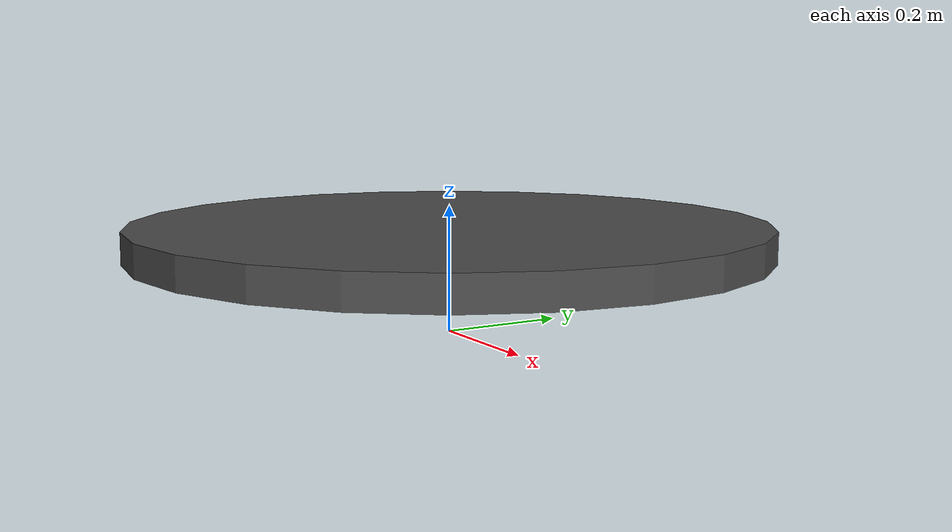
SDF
<?xml version="1.0" ?>
<sdf version="1.9">
  <model name="sutra_x500">
    <link name="base_link">
      <pose>0 0 0.15 0 0 0</pose>
      <inertial>
        <mass>1.5</mass>
        <inertia>
          <ixx>0.0035</ixx>
          <iyy>0.0035</iyy>
          <izz>0.0063</izz>
          <ixy>0</ixy>
          <ixz>0</ixz>
          <iyz>0</iyz>
        </inertia>
      </inertial>

      <!-- Visual: simple quadrotor frame -->
      <visual name="visual">
        <geometry>
          <cylinder>
            <radius>0.5</radius>
            <length>0.05</length>
          </cylinder>
        </geometry>
        <material>
          <ambient>0.2 0.2 0.2 1</ambient>
          <diffuse>0.3 0.3 0.3 1</diffuse>
        </material>
      </visual>

      <!-- Collision: simple cylinder -->
      <collision name="collision">
        <geometry>
          <cylinder>
            <radius>0.5</radius>
            <length>0.1</length>
          </cylinder>
        </geometry>
      </collision>

      <!-- IMU (250 Hz) -->
      <sensor name="imu" type="imu">
        <always_on>true</always_on>
        <update_rate>250</update_rate>
        <topic>/fmu/out/sensor_combined</topic>
      </sensor>

      <!-- GPS/NavSat (5 Hz) -->
      <sensor name="gps" type="navsat">
        <always_on>true</always_on>
        <update_rate>5</update_rate>
      </sensor>

      <!-- RGB Camera (forward, 30 Hz) -->
      <sensor name="rgb_camera" type="camera">
        <always_on>true</always_on>
        <update_rate>30</update_rate>
        <topic>/camera/rgb/image_raw</topic>
        <camera name="rgb">
          <horizontal_fov>1.047</horizontal_fov>
          <image>
            <width>640</width>
            <height>480</height>
            <format>R8G8B8</format>
          </image>
          <clip>
            <near>0.1</near>
            <far>100</far>
          </clip>
        </camera>
        <pose relative_to="base_link">0.3 0 0.1 0 0 0</pose>
      </sensor>

      <!-- Thermal Camera (downward, 10 Hz) -->
      <sensor name="thermal" type="thermal_camera">
        <always_on>true</always_on>
        <update_rate>10</update_rate>
        <topic>/camera/thermal/image_raw</topic>
        <camera name="thermal">
          <horizontal_fov>0.872</horizontal_fov>
          <image>
            <width>320</width>
            <height>240</height>
            <format>L8</format>
          </image>
          <clip>
            <near>0.1</near>
            <far>50</far>
          </clip>
        </camera>
        <pose relative_to="base_link">0 0 -0.1 1.5708 0 0</pose>
      </sensor>

      <!-- 3D LiDAR (10 Hz, 1024x32 channels) -->
      <sensor name="lidar" type="gpu_lidar">
        <always_on>true</always_on>
        <update_rate>10</update_rate>
        <topic>/lidar/points</topic>
        <lidar name="lidar">
          <scan>
            <horizontal>
              <samples>1024</samples>
              <min_angle>-3.14159</min_angle>
              <max_angle>3.14159</max_angle>
            </horizontal>
            <vertical>
              <samples>32</samples>
              <min_angle>-0.4189</min_angle>
              <max_angle>0.4189</max_angle>
            </vertical>
          </scan>
          <range>
            <min>0.1</min>
            <max>30</max>
          </range>
        </lidar>
        <pose relative_to="base_link">0 0 0.2 0 0 0</pose>
      </sensor>

      <!-- mmWave Radar (downward, 20 Hz, proxy) -->
      <sensor name="radar" type="ray">
        <always_on>true</always_on>
        <update_rate>20</update_rate>
        <topic>/radar/scan</topic>
        <ray name="radar_ray">
          <scan>
            <horizontal>
              <samples>100</samples>
              <min_angle>-0.5236</min_angle>
              <max_angle>0.5236</max_angle>
            </horizontal>
          </scan>
          <range>
            <min>0.5</min>
            <max>50</max>
          </range>
        </ray>
        <pose relative_to="base_link">0 0 -0.1 1.5708 0 0</pose>
      </sensor>
    </link>

    <!-- 4× Motor links (simplified from default x500) -->
    <link name="motor_0">
      <pose>0.25 0.25 0.15 0 0 0</pose>
      <inertial>
        <mass>0.05</mass>
        <inertia>
          <ixx>1e-05</ixx><iyy>1e-05</iyy><izz>1e-05</izz>
          <ixy>0</ixy><ixz>0</ixz><iyz>0</iyz>
        </inertia>
      </inertial>
      <visual name="visual">
        <geometry><cylinder><radius>0.02</radius><length>0.02</length></cylinder></geometry>
        <material><ambient>0.8 0.8 0.8 1</ambient><diffuse>0.9 0.9 0.9 1</diffuse></material>
      </visual>
      <collision name="collision">
        <geometry><cylinder><radius>0.02</radius><length>0.02</length></cylinder></geometry>
      </collision>
    </link>

    <link name="motor_1">
      <pose>-0.25 -0.25 0.15 0 0 0</pose>
      <inertial>
        <mass>0.05</mass>
        <inertia>
          <ixx>1e-05</ixx><iyy>1e-05</iyy><izz>1e-05</izz>
          <ixy>0</ixy><ixz>0</ixz><iyz>0</iyz>
        </inertia>
      </inertial>
      <visual name="visual">
        <geometry><cylinder><radius>0.02</radius><length>0.02</length></cylinder></geometry>
        <material><ambient>0.8 0.8 0.8 1</ambient><diffuse>0.9 0.9 0.9 1</diffuse></material>
      </visual>
      <collision name="collision">
        <geometry><cylinder><radius>0.02</radius><length>0.02</length></cylinder></geometry>
      </collision>
    </link>

    <link name="motor_2">
      <pose>0.25 -0.25 0.15 0 0 0</pose>
      <inertial>
        <mass>0.05</mass>
        <inertia>
          <ixx>1e-05</ixx><iyy>1e-05</iyy><izz>1e-05</izz>
          <ixy>0</ixy><ixz>0</ixz><iyz>0</iyz>
        </inertia>
      </inertial>
      <visual name="visual">
        <geometry><cylinder><radius>0.02</radius><length>0.02</length></cylinder></geometry>
        <material><ambient>0.8 0.8 0.8 1</ambient><diffuse>0.9 0.9 0.9 1</diffuse></material>
      </visual>
      <collision name="collision">
        <geometry><cylinder><radius>0.02</radius><length>0.02</length></cylinder></geometry>
      </collision>
    </link>

    <link name="motor_3">
      <pose>-0.25 0.25 0.15 0 0 0</pose>
      <inertial>
        <mass>0.05</mass>
        <inertia>
          <ixx>1e-05</ixx><iyy>1e-05</iyy><izz>1e-05</izz>
          <ixy>0</ixy><ixz>0</ixz><iyz>0</iyz>
        </inertia>
      </inertial>
      <visual name="visual">
        <geometry><cylinder><radius>0.02</radius><length>0.02</length></cylinder></geometry>
        <material><ambient>0.8 0.8 0.8 1</ambient><diffuse>0.9 0.9 0.9 1</diffuse></material>
      </visual>
      <collision name="collision">
        <geometry><cylinder><radius>0.02</radius><length>0.02</length></cylinder></geometry>
      </collision>
    </link>

    <!-- Joint: base to motor_0 -->
    <joint name="joint_motor_0" type="revolute">
      <parent>base_link</parent>
      <child>motor_0</child>
      <axis>
        <xyz>0 0 1</xyz>
        <limit>
          <lower>-1e+16</lower>
          <upper>1e+16</upper>
        </limit>
      </axis>
    </joint>

    <!-- Joint: base to motor_1 -->
    <joint name="joint_motor_1" type="revolute">
      <parent>base_link</parent>
      <child>motor_1</child>
      <axis>
        <xyz>0 0 1</xyz>
        <limit>
          <lower>-1e+16</lower>
          <upper>1e+16</upper>
        </limit>
      </axis>
    </joint>

    <!-- Joint: base to motor_2 -->
    <joint name="joint_motor_2" type="revolute">
      <parent>base_link</parent>
      <child>motor_2</child>
      <axis>
        <xyz>0 0 1</xyz>
        <limit>
          <lower>-1e+16</lower>
          <upper>1e+16</upper>
        </limit>
      </axis>
    </joint>

    <!-- Joint: base to motor_3 -->
    <joint name="joint_motor_3" type="revolute">
      <parent>base_link</parent>
      <child>motor_3</child>
      <axis>
        <xyz>0 0 1</xyz>
        <limit>
          <lower>-1e+16</lower>
          <upper>1e+16</upper>
        </limit>
      </axis>
    </joint>

    <!-- Drone battery plugin (for PX4) -->
    <plugin filename="gz-sim-battery-system" name="gz::sim::systems::Battery">
      <battery_name>lipo2s2p</battery_name>
      <voltage>12.6</voltage>
      <capacity>2.2</capacity>
      <resistance>0.001</resistance>
      <smooth_current_tau>0.99</smooth_current_tau>
      <start_on_motion>true</start_on_motion>
    </plugin>

    <!-- Joint state publisher for visualization -->
    <plugin filename="gz-sim-joint-state-publisher-system" name="gz::sim::systems::JointStatePublisher">
      <joint_name>joint_motor_0</joint_name>
      <joint_name>joint_motor_1</joint_name>
      <joint_name>joint_motor_2</joint_name>
      <joint_name>joint_motor_3</joint_name>
    </plugin>
  </model>
</sdf>
